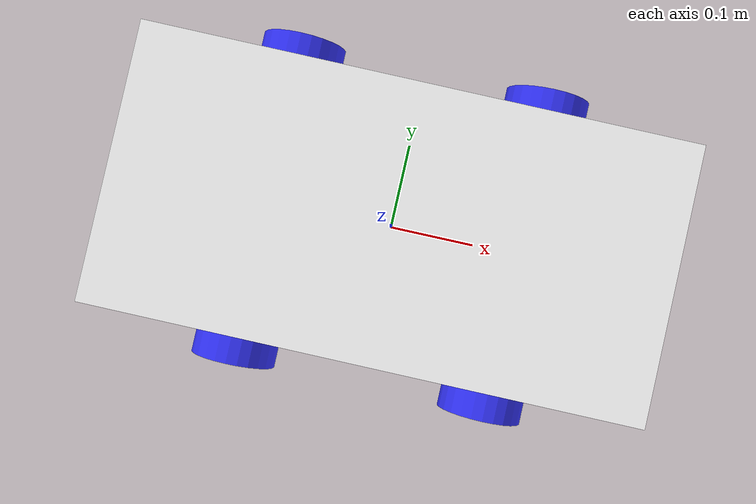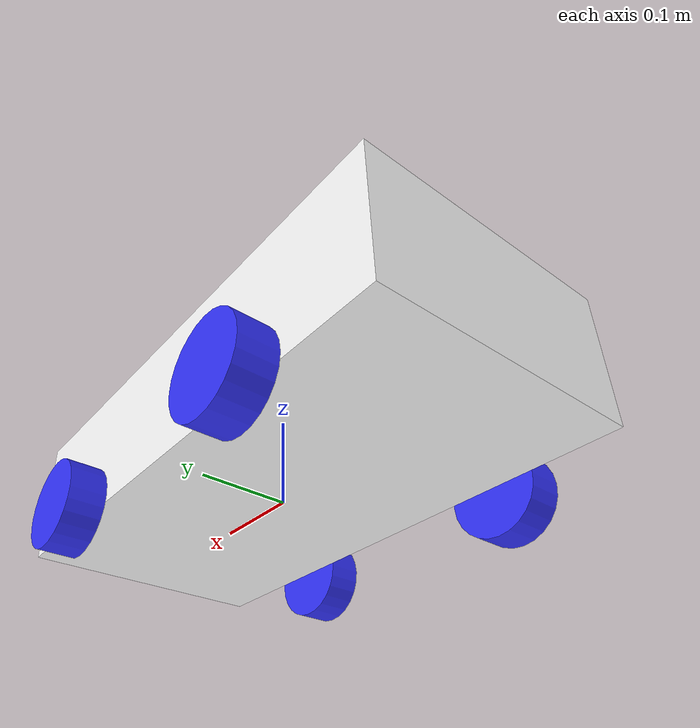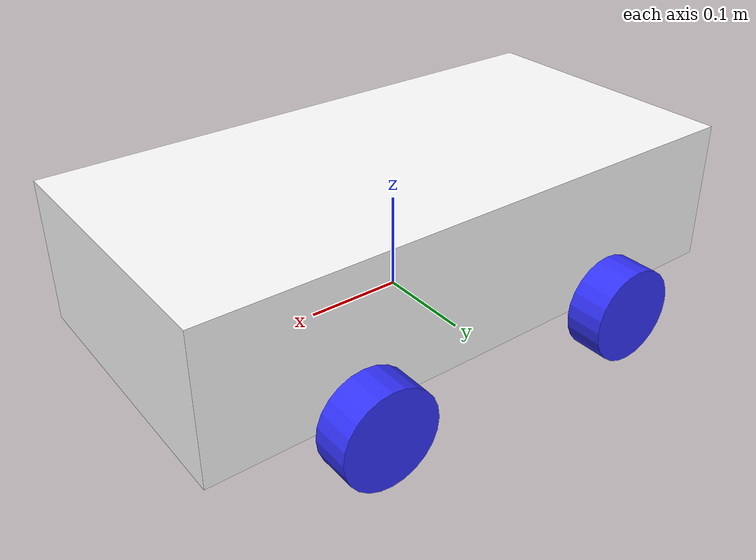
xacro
<?xml version="1.0"?>
<robot xmlns:xacro="http://www.ros.org/wiki/xacro" >

<xacro:include filename="inertial.urdf.xacro"/>
    <material name="white">
        <color rgba="1 1 1 1" />
    </material>

    <material name="orange">
        <color rgba="1 0.3 0.1 1"/>
    </material>

    <material name="blue">
        <color rgba="0.2 0.2 1 1"/>
    </material>

    <material name="black">
        <color rgba="0 0 0 1"/>
    </material>

    <xacro:property name="pi" value="3.1415926535897931"/>

    <!-- BASE LINK -->

    <link name="base_link">

    </link>

    <!-- CHASSIS LINK -->

    <joint name="chassis_joint" type="fixed">
        <parent link="base_link"/>
        <child link="chassis"/>
        <origin xyz="-0.3 0 0"/>
    </joint>

    <link name="chassis">
        <visual>
            <origin xyz="0.3 0 0.075"/>
            <geometry>
                <box size="0.6 0.3 0.15"/>
            </geometry>
            <material name="white"/>
        </visual>
        <collision>
            <origin xyz="0.3 0 0.075"/>
            <geometry>
                <box size="0.6 0.3 0.15"/>
            </geometry>
        </collision>
        <xacro:inertial_box mass="0.5" x="0.6" y="0.3" z="0.15">
            <origin xyz="0.3 0 0.075" rpy="0 0 0"/>
        </xacro:inertial_box>
    </link>

    <!-- LEFT WHEEL LINK -->

    <joint name="left_wheel_back_joint" type="continuous">
        <parent link="base_link"/>
        <child link="left_wheel_back"/>
        <origin xyz="-0.15 0.175 0" rpy="-${pi/2} 0 0" />
        <axis xyz="0 0 1"/>
    </joint>

    <link name="left_wheel_back">
        <visual>
            <geometry>
                <cylinder radius="0.05" length="0.04"/>
            </geometry>
            <material name="blue"/>
        </visual>
        <collision>
            <geometry>
                <cylinder radius="0.05" length="0.04"/>
            </geometry>
        </collision>
        <xacro:inertial_cylinder mass="0.1" length="0.04" radius="0.05">
            <origin xyz="0 0 0" rpy="0 0 0"/>
        </xacro:inertial_cylinder>
    </link>

    <!-- RIGHT WHEEL LINK -->

    <joint name="right_wheel_back_joint" type="continuous">
        <parent link="base_link"/>
        <child link="right_wheel_back"/>
        <origin xyz="-0.15 -0.175 0" rpy="${pi/2} 0 0" />
        <axis xyz="0 0 -1"/>
    </joint>

    <link name="right_wheel_back">
        <visual>
            <geometry>
                <cylinder radius="0.05" length="0.04"/>
            </geometry>
            <material name="blue"/>
        </visual>
        <collision>
            <geometry>
                <cylinder radius="0.05" length="0.04"/>
            </geometry>
        </collision>
        <xacro:inertial_cylinder mass="0.1" length="0.04" radius="0.05">
            <origin xyz="0 0 0" rpy="0 0 0"/>
        </xacro:inertial_cylinder>
    </link>

    <joint name="left_wheel_front_joint" type="continuous">
        <parent link="base_link"/>
        <child link="left_wheel_front"/>
        <origin xyz="0.15 0.175 0" rpy="-${pi/2} 0 0" />
        <axis xyz="0 0 1"/>
    </joint>

    <link name="left_wheel_front">
        <visual>
            <geometry>
                <cylinder radius="0.05" length="0.04"/>
            </geometry>
            <material name="blue"/>
        </visual>
        <collision>
            <geometry>
                <cylinder radius="0.05" length="0.04"/>
            </geometry>
        </collision>
        <xacro:inertial_cylinder mass="0.1" length="0.04" radius="0.05">
            <origin xyz="0 0 0" rpy="0 0 0"/>
        </xacro:inertial_cylinder>
    </link>

    <!-- RIGHT WHEEL LINK -->

    <joint name="right_wheel_front_joint" type="continuous">
        <parent link="base_link"/>
        <child link="right_wheel_front"/>
        <origin xyz="0.15 -0.175 0" rpy="${pi/2} 0 0" />
        <axis xyz="0 0 -1"/>
    </joint>

    <link name="right_wheel_front">
        <visual>
            <geometry>
                <cylinder radius="0.05" length="0.04"/>
            </geometry>
            <material name="blue"/>
        </visual>
        <collision>
            <geometry>
                <cylinder radius="0.05" length="0.04"/>
            </geometry>
        </collision>
        <xacro:inertial_cylinder mass="0.1" length="0.04" radius="0.05">
            <origin xyz="0 0 0" rpy="0 0 0"/>
        </xacro:inertial_cylinder>
    </link>

</robot>
